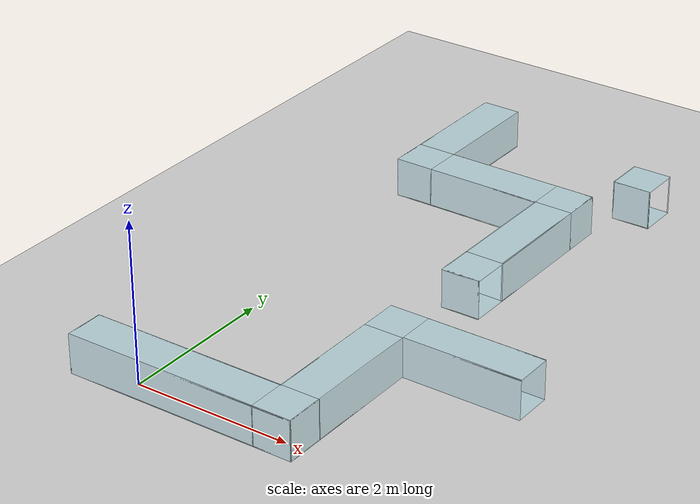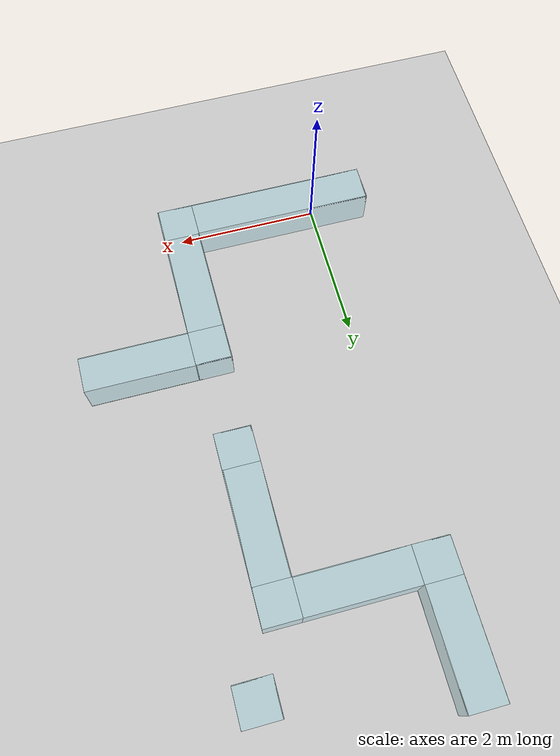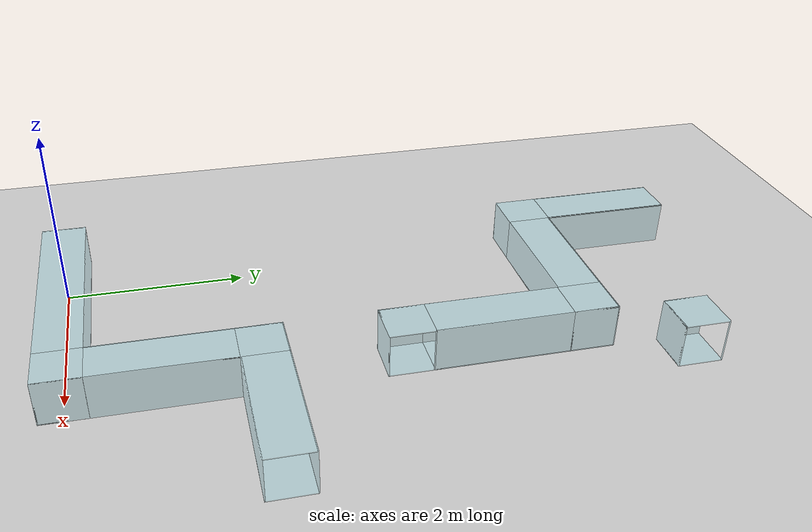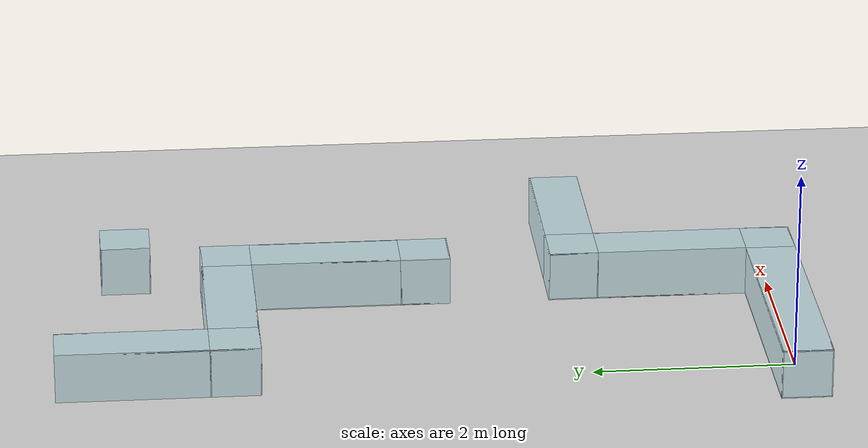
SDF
<sdf version="1.8">
 <world name="demo">
  <model name="ground_plane">
   <static>true</static>
   <link name="link">
    <collision name="collision">
     <geometry><plane><normal>0 0 1</normal><size>100 100</size></plane></geometry>
    </collision>
    <visual name="visual">
     <geometry><plane><normal>0 0 1</normal><size>100 100</size></plane></geometry>
     <material>
      <ambient>0.8 0.8 0.8 1</ambient>
      <diffuse>0.8 0.8 0.8 1</diffuse>
      <specular>0.8 0.8 0.8 1</specular>
     </material>
    </visual>
   </link>
  </model>
  <model name="ground_plane">
   <static>true</static>
   <link name="link">
    <collision name="collision">
     <geometry><plane><normal>0 0 1</normal><size>100 100</size></plane></geometry>
    </collision>
    <visual name="visual">
     <geometry><plane><normal>0 0 1</normal><size>100 100</size></plane></geometry>
     <material>
      <ambient>0.6 0.85 0.9 0.4</ambient>
      <diffuse>0.6 0.85 0.9 0.4</diffuse>
      <specular>0.1 0.1 0.1 1</specular>
      <emissive>0 0 0 1</emissive>
     </material>
    </visual>
   </link>
  </model>
  <model name="T1">
   <pose>0.500000 0.000000 0.250000 0.000000 0.000000 0.000000</pose>
   <static>true</static>
   <link name="link">
    <collision name="col_side_posY">
     <pose>0.000000 0.245000 0.000000 0.000000 0.000000 0.000000</pose>
     <geometry><box><size>2.500000 0.010000 0.500000</size></box></geometry>
    </collision>
    <visual name="vis_col_side_posY">
     <pose>0.000000 0.245000 0.000000 0.000000 0.000000 0.000000</pose>
     <geometry><box><size>2.500000 0.010000 0.500000</size></box></geometry>
     <material>
      <ambient>0.6 0.85 0.9 0.4</ambient>
      <diffuse>0.6 0.85 0.9 0.4</diffuse>
      <specular>0.1 0.1 0.1 1</specular>
      <emissive>0 0 0 1</emissive>
     </material>
    </visual>
    <collision name="col_side_negY">
     <pose>0.000000 -0.245000 0.000000 0.000000 0.000000 0.000000</pose>
     <geometry><box><size>2.500000 0.010000 0.500000</size></box></geometry>
    </collision>
    <visual name="vis_col_side_negY">
     <pose>0.000000 -0.245000 0.000000 0.000000 0.000000 0.000000</pose>
     <geometry><box><size>2.500000 0.010000 0.500000</size></box></geometry>
     <material>
      <ambient>0.6 0.85 0.9 0.4</ambient>
      <diffuse>0.6 0.85 0.9 0.4</diffuse>
      <specular>0.1 0.1 0.1 1</specular>
      <emissive>0 0 0 1</emissive>
     </material>
    </visual>
    <collision name="col_top">
     <pose>0.000000 0.000000 0.245000 0.000000 0.000000 0.000000</pose>
     <geometry><box><size>2.500000 0.500000 0.010000</size></box></geometry>
    </collision>
    <visual name="vis_col_top">
     <pose>0.000000 0.000000 0.245000 0.000000 0.000000 0.000000</pose>
     <geometry><box><size>2.500000 0.500000 0.010000</size></box></geometry>
     <material>
      <ambient>0.6 0.85 0.9 0.4</ambient>
      <diffuse>0.6 0.85 0.9 0.4</diffuse>
      <specular>0.1 0.1 0.1 1</specular>
      <emissive>0 0 0 1</emissive>
     </material>
    </visual>
    <collision name="col_bottom">
     <pose>0.000000 0.000000 -0.245000 0.000000 0.000000 0.000000</pose>
     <geometry><box><size>2.500000 0.500000 0.010000</size></box></geometry>
    </collision>
    <visual name="vis_col_bottom">
     <pose>0.000000 0.000000 -0.245000 0.000000 0.000000 0.000000</pose>
     <geometry><box><size>2.500000 0.500000 0.010000</size></box></geometry>
     <material>
      <ambient>0.6 0.85 0.9 0.4</ambient>
      <diffuse>0.6 0.85 0.9 0.4</diffuse>
      <specular>0.1 0.1 0.1 1</specular>
      <emissive>0 0 0 1</emissive>
     </material>
    </visual>
    <collision name="col_end_negX">
     <pose>-1.245000 0.000000 0.000000 0.000000 0.000000 0.000000</pose>
     <geometry><box><size>0.010000 0.500000 0.500000</size></box></geometry>
    </collision>
    <visual name="vis_col_end_negX">
     <pose>-1.245000 0.000000 0.000000 0.000000 0.000000 0.000000</pose>
     <geometry><box><size>0.010000 0.500000 0.500000</size></box></geometry>
     <material>
      <ambient>0.6 0.85 0.9 0.4</ambient>
      <diffuse>0.6 0.85 0.9 0.4</diffuse>
      <specular>0.1 0.1 0.1 1</specular>
      <emissive>0 0 0 1</emissive>
     </material>
    </visual>
   </link>
  </model>
  <model name="T2">
   <pose>2.000000 1.000000 0.250000 0.000000 0.000000 0.000000</pose>
   <static>true</static>
   <link name="link">
    <collision name="col_side_posX">
     <pose>0.245000 0.000000 0.000000 0.000000 0.000000 0.000000</pose>
     <geometry><box><size>0.010000 1.500000 0.500000</size></box></geometry>
    </collision>
    <visual name="vis_col_side_posX">
     <pose>0.245000 0.000000 0.000000 0.000000 0.000000 0.000000</pose>
     <geometry><box><size>0.010000 1.500000 0.500000</size></box></geometry>
     <material>
      <ambient>0.6 0.85 0.9 0.4</ambient>
      <diffuse>0.6 0.85 0.9 0.4</diffuse>
      <specular>0.1 0.1 0.1 1</specular>
      <emissive>0 0 0 1</emissive>
     </material>
    </visual>
    <collision name="col_side_negX">
     <pose>-0.245000 0.000000 0.000000 0.000000 0.000000 0.000000</pose>
     <geometry><box><size>0.010000 1.500000 0.500000</size></box></geometry>
    </collision>
    <visual name="vis_col_side_negX">
     <pose>-0.245000 0.000000 0.000000 0.000000 0.000000 0.000000</pose>
     <geometry><box><size>0.010000 1.500000 0.500000</size></box></geometry>
     <material>
      <ambient>0.6 0.85 0.9 0.4</ambient>
      <diffuse>0.6 0.85 0.9 0.4</diffuse>
      <specular>0.1 0.1 0.1 1</specular>
      <emissive>0 0 0 1</emissive>
     </material>
    </visual>
    <collision name="col_top">
     <pose>0.000000 0.000000 0.245000 0.000000 0.000000 0.000000</pose>
     <geometry><box><size>0.500000 1.500000 0.010000</size></box></geometry>
    </collision>
    <visual name="vis_col_top">
     <pose>0.000000 0.000000 0.245000 0.000000 0.000000 0.000000</pose>
     <geometry><box><size>0.500000 1.500000 0.010000</size></box></geometry>
     <material>
      <ambient>0.6 0.85 0.9 0.4</ambient>
      <diffuse>0.6 0.85 0.9 0.4</diffuse>
      <specular>0.1 0.1 0.1 1</specular>
      <emissive>0 0 0 1</emissive>
     </material>
    </visual>
    <collision name="col_bottom">
     <pose>0.000000 0.000000 -0.245000 0.000000 0.000000 0.000000</pose>
     <geometry><box><size>0.500000 1.500000 0.010000</size></box></geometry>
    </collision>
    <visual name="vis_col_bottom">
     <pose>0.000000 0.000000 -0.245000 0.000000 0.000000 0.000000</pose>
     <geometry><box><size>0.500000 1.500000 0.010000</size></box></geometry>
     <material>
      <ambient>0.6 0.85 0.9 0.4</ambient>
      <diffuse>0.6 0.85 0.9 0.4</diffuse>
      <specular>0.1 0.1 0.1 1</specular>
      <emissive>0 0 0 1</emissive>
     </material>
    </visual>
   </link>
  </model>
  <model name="T3">
   <pose>3.000000 2.000000 0.250000 0.000000 0.000000 0.000000</pose>
   <static>true</static>
   <link name="link">
    <collision name="col_side_posY">
     <pose>0.000000 0.245000 0.000000 0.000000 0.000000 0.000000</pose>
     <geometry><box><size>1.500000 0.010000 0.500000</size></box></geometry>
    </collision>
    <visual name="vis_col_side_posY">
     <pose>0.000000 0.245000 0.000000 0.000000 0.000000 0.000000</pose>
     <geometry><box><size>1.500000 0.010000 0.500000</size></box></geometry>
     <material>
      <ambient>0.6 0.85 0.9 0.4</ambient>
      <diffuse>0.6 0.85 0.9 0.4</diffuse>
      <specular>0.1 0.1 0.1 1</specular>
      <emissive>0 0 0 1</emissive>
     </material>
    </visual>
    <collision name="col_side_negY">
     <pose>0.000000 -0.245000 0.000000 0.000000 0.000000 0.000000</pose>
     <geometry><box><size>1.500000 0.010000 0.500000</size></box></geometry>
    </collision>
    <visual name="vis_col_side_negY">
     <pose>0.000000 -0.245000 0.000000 0.000000 0.000000 0.000000</pose>
     <geometry><box><size>1.500000 0.010000 0.500000</size></box></geometry>
     <material>
      <ambient>0.6 0.85 0.9 0.4</ambient>
      <diffuse>0.6 0.85 0.9 0.4</diffuse>
      <specular>0.1 0.1 0.1 1</specular>
      <emissive>0 0 0 1</emissive>
     </material>
    </visual>
    <collision name="col_top">
     <pose>0.000000 0.000000 0.245000 0.000000 0.000000 0.000000</pose>
     <geometry><box><size>1.500000 0.500000 0.010000</size></box></geometry>
    </collision>
    <visual name="vis_col_top">
     <pose>0.000000 0.000000 0.245000 0.000000 0.000000 0.000000</pose>
     <geometry><box><size>1.500000 0.500000 0.010000</size></box></geometry>
     <material>
      <ambient>0.6 0.85 0.9 0.4</ambient>
      <diffuse>0.6 0.85 0.9 0.4</diffuse>
      <specular>0.1 0.1 0.1 1</specular>
      <emissive>0 0 0 1</emissive>
     </material>
    </visual>
    <collision name="col_bottom">
     <pose>0.000000 0.000000 -0.245000 0.000000 0.000000 0.000000</pose>
     <geometry><box><size>1.500000 0.500000 0.010000</size></box></geometry>
    </collision>
    <visual name="vis_col_bottom">
     <pose>0.000000 0.000000 -0.245000 0.000000 0.000000 0.000000</pose>
     <geometry><box><size>1.500000 0.500000 0.010000</size></box></geometry>
     <material>
      <ambient>0.6 0.85 0.9 0.4</ambient>
      <diffuse>0.6 0.85 0.9 0.4</diffuse>
      <specular>0.1 0.1 0.1 1</specular>
      <emissive>0 0 0 1</emissive>
     </material>
    </visual>
   </link>
  </model>
  <model name="T6">
   <pose>2.000000 4.500000 0.250000 0.000000 0.000000 0.000000</pose>
   <static>true</static>
   <link name="link">
    <collision name="col_side_posX">
     <pose>0.245000 0.000000 0.000000 0.000000 0.000000 0.000000</pose>
     <geometry><box><size>0.010000 1.500000 0.500000</size></box></geometry>
    </collision>
    <visual name="vis_col_side_posX">
     <pose>0.245000 0.000000 0.000000 0.000000 0.000000 0.000000</pose>
     <geometry><box><size>0.010000 1.500000 0.500000</size></box></geometry>
     <material>
      <ambient>0.6 0.85 0.9 0.4</ambient>
      <diffuse>0.6 0.85 0.9 0.4</diffuse>
      <specular>0.1 0.1 0.1 1</specular>
      <emissive>0 0 0 1</emissive>
     </material>
    </visual>
    <collision name="col_side_negX">
     <pose>-0.245000 0.000000 0.000000 0.000000 0.000000 0.000000</pose>
     <geometry><box><size>0.010000 1.500000 0.500000</size></box></geometry>
    </collision>
    <visual name="vis_col_side_negX">
     <pose>-0.245000 0.000000 0.000000 0.000000 0.000000 0.000000</pose>
     <geometry><box><size>0.010000 1.500000 0.500000</size></box></geometry>
     <material>
      <ambient>0.6 0.85 0.9 0.4</ambient>
      <diffuse>0.6 0.85 0.9 0.4</diffuse>
      <specular>0.1 0.1 0.1 1</specular>
      <emissive>0 0 0 1</emissive>
     </material>
    </visual>
    <collision name="col_top">
     <pose>0.000000 0.000000 0.245000 0.000000 0.000000 0.000000</pose>
     <geometry><box><size>0.500000 1.500000 0.010000</size></box></geometry>
    </collision>
    <visual name="vis_col_top">
     <pose>0.000000 0.000000 0.245000 0.000000 0.000000 0.000000</pose>
     <geometry><box><size>0.500000 1.500000 0.010000</size></box></geometry>
     <material>
      <ambient>0.6 0.85 0.9 0.4</ambient>
      <diffuse>0.6 0.85 0.9 0.4</diffuse>
      <specular>0.1 0.1 0.1 1</specular>
      <emissive>0 0 0 1</emissive>
     </material>
    </visual>
    <collision name="col_bottom">
     <pose>0.000000 0.000000 -0.245000 0.000000 0.000000 0.000000</pose>
     <geometry><box><size>0.500000 1.500000 0.010000</size></box></geometry>
    </collision>
    <visual name="vis_col_bottom">
     <pose>0.000000 0.000000 -0.245000 0.000000 0.000000 0.000000</pose>
     <geometry><box><size>0.500000 1.500000 0.010000</size></box></geometry>
     <material>
      <ambient>0.6 0.85 0.9 0.4</ambient>
      <diffuse>0.6 0.85 0.9 0.4</diffuse>
      <specular>0.1 0.1 0.1 1</specular>
      <emissive>0 0 0 1</emissive>
     </material>
    </visual>
   </link>
  </model>
  <model name="T7">
   <pose>1.000000 5.500000 0.250000 0.000000 0.000000 0.000000</pose>
   <static>true</static>
   <link name="link">
    <collision name="col_side_posY">
     <pose>0.000000 0.245000 0.000000 0.000000 0.000000 0.000000</pose>
     <geometry><box><size>1.500000 0.010000 0.500000</size></box></geometry>
    </collision>
    <visual name="vis_col_side_posY">
     <pose>0.000000 0.245000 0.000000 0.000000 0.000000 0.000000</pose>
     <geometry><box><size>1.500000 0.010000 0.500000</size></box></geometry>
     <material>
      <ambient>0.6 0.85 0.9 0.4</ambient>
      <diffuse>0.6 0.85 0.9 0.4</diffuse>
      <specular>0.1 0.1 0.1 1</specular>
      <emissive>0 0 0 1</emissive>
     </material>
    </visual>
    <collision name="col_side_negY">
     <pose>0.000000 -0.245000 0.000000 0.000000 0.000000 0.000000</pose>
     <geometry><box><size>1.500000 0.010000 0.500000</size></box></geometry>
    </collision>
    <visual name="vis_col_side_negY">
     <pose>0.000000 -0.245000 0.000000 0.000000 0.000000 0.000000</pose>
     <geometry><box><size>1.500000 0.010000 0.500000</size></box></geometry>
     <material>
      <ambient>0.6 0.85 0.9 0.4</ambient>
      <diffuse>0.6 0.85 0.9 0.4</diffuse>
      <specular>0.1 0.1 0.1 1</specular>
      <emissive>0 0 0 1</emissive>
     </material>
    </visual>
    <collision name="col_top">
     <pose>0.000000 0.000000 0.245000 0.000000 0.000000 0.000000</pose>
     <geometry><box><size>1.500000 0.500000 0.010000</size></box></geometry>
    </collision>
    <visual name="vis_col_top">
     <pose>0.000000 0.000000 0.245000 0.000000 0.000000 0.000000</pose>
     <geometry><box><size>1.500000 0.500000 0.010000</size></box></geometry>
     <material>
      <ambient>0.6 0.85 0.9 0.4</ambient>
      <diffuse>0.6 0.85 0.9 0.4</diffuse>
      <specular>0.1 0.1 0.1 1</specular>
      <emissive>0 0 0 1</emissive>
     </material>
    </visual>
    <collision name="col_bottom">
     <pose>0.000000 0.000000 -0.245000 0.000000 0.000000 0.000000</pose>
     <geometry><box><size>1.500000 0.500000 0.010000</size></box></geometry>
    </collision>
    <visual name="vis_col_bottom">
     <pose>0.000000 0.000000 -0.245000 0.000000 0.000000 0.000000</pose>
     <geometry><box><size>1.500000 0.500000 0.010000</size></box></geometry>
     <material>
      <ambient>0.6 0.85 0.9 0.4</ambient>
      <diffuse>0.6 0.85 0.9 0.4</diffuse>
      <specular>0.1 0.1 0.1 1</specular>
      <emissive>0 0 0 1</emissive>
     </material>
    </visual>
   </link>
  </model>
  <model name="T8">
   <pose>0.000000 6.500000 0.250000 0.000000 0.000000 0.000000</pose>
   <static>true</static>
   <link name="link">
    <collision name="col_side_posX">
     <pose>0.245000 0.000000 0.000000 0.000000 0.000000 0.000000</pose>
     <geometry><box><size>0.010000 1.500000 0.500000</size></box></geometry>
    </collision>
    <visual name="vis_col_side_posX">
     <pose>0.245000 0.000000 0.000000 0.000000 0.000000 0.000000</pose>
     <geometry><box><size>0.010000 1.500000 0.500000</size></box></geometry>
     <material>
      <ambient>0.6 0.85 0.9 0.4</ambient>
      <diffuse>0.6 0.85 0.9 0.4</diffuse>
      <specular>0.1 0.1 0.1 1</specular>
      <emissive>0 0 0 1</emissive>
     </material>
    </visual>
    <collision name="col_side_negX">
     <pose>-0.245000 0.000000 0.000000 0.000000 0.000000 0.000000</pose>
     <geometry><box><size>0.010000 1.500000 0.500000</size></box></geometry>
    </collision>
    <visual name="vis_col_side_negX">
     <pose>-0.245000 0.000000 0.000000 0.000000 0.000000 0.000000</pose>
     <geometry><box><size>0.010000 1.500000 0.500000</size></box></geometry>
     <material>
      <ambient>0.6 0.85 0.9 0.4</ambient>
      <diffuse>0.6 0.85 0.9 0.4</diffuse>
      <specular>0.1 0.1 0.1 1</specular>
      <emissive>0 0 0 1</emissive>
     </material>
    </visual>
    <collision name="col_top">
     <pose>0.000000 0.000000 0.245000 0.000000 0.000000 0.000000</pose>
     <geometry><box><size>0.500000 1.500000 0.010000</size></box></geometry>
    </collision>
    <visual name="vis_col_top">
     <pose>0.000000 0.000000 0.245000 0.000000 0.000000 0.000000</pose>
     <geometry><box><size>0.500000 1.500000 0.010000</size></box></geometry>
     <material>
      <ambient>0.6 0.85 0.9 0.4</ambient>
      <diffuse>0.6 0.85 0.9 0.4</diffuse>
      <specular>0.1 0.1 0.1 1</specular>
      <emissive>0 0 0 1</emissive>
     </material>
    </visual>
    <collision name="col_bottom">
     <pose>0.000000 0.000000 -0.245000 0.000000 0.000000 0.000000</pose>
     <geometry><box><size>0.500000 1.500000 0.010000</size></box></geometry>
    </collision>
    <visual name="vis_col_bottom">
     <pose>0.000000 0.000000 -0.245000 0.000000 0.000000 0.000000</pose>
     <geometry><box><size>0.500000 1.500000 0.010000</size></box></geometry>
     <material>
      <ambient>0.6 0.85 0.9 0.4</ambient>
      <diffuse>0.6 0.85 0.9 0.4</diffuse>
      <specular>0.1 0.1 0.1 1</specular>
      <emissive>0 0 0 1</emissive>
     </material>
    </visual>
   </link>
  </model>
  <model name="C1">
   <pose>2.000000 0.000000 0.250000 0.000000 0.000000 0.000000</pose>
   <static>true</static>
   <link name="link">
    <collision name="wall_posX">
     <pose>0.245000 0.000000 0.000000 0.000000 0.000000 0.000000</pose>
     <geometry><box><size>0.010000 0.500000 0.500000</size></box></geometry>
    </collision>
    <visual name="vis_wall_posX">
     <pose>0.245000 0.000000 0.000000 0.000000 0.000000 0.000000</pose>
     <geometry><box><size>0.010000 0.500000 0.500000</size></box></geometry>
     <material>
      <ambient>0.6 0.85 0.9 0.4</ambient>
      <diffuse>0.6 0.85 0.9 0.4</diffuse>
      <specular>0.1 0.1 0.1 1</specular>
      <emissive>0 0 0 1</emissive>
     </material>
    </visual>
    <collision name="wall_negY">
     <pose>0.000000 -0.245000 0.000000 0.000000 0.000000 0.000000</pose>
     <geometry><box><size>0.500000 0.010000 0.500000</size></box></geometry>
    </collision>
    <visual name="vis_wall_negY">
     <pose>0.000000 -0.245000 0.000000 0.000000 0.000000 0.000000</pose>
     <geometry><box><size>0.500000 0.010000 0.500000</size></box></geometry>
     <material>
      <ambient>0.6 0.85 0.9 0.4</ambient>
      <diffuse>0.6 0.85 0.9 0.4</diffuse>
      <specular>0.1 0.1 0.1 1</specular>
      <emissive>0 0 0 1</emissive>
     </material>
    </visual>
    <collision name="wall_posZ">
     <pose>0.000000 0.000000 0.245000 0.000000 0.000000 0.000000</pose>
     <geometry><box><size>0.500000 0.500000 0.010000</size></box></geometry>
    </collision>
    <visual name="vis_wall_posZ">
     <pose>0.000000 0.000000 0.245000 0.000000 0.000000 0.000000</pose>
     <geometry><box><size>0.500000 0.500000 0.010000</size></box></geometry>
     <material>
      <ambient>0.6 0.85 0.9 0.4</ambient>
      <diffuse>0.6 0.85 0.9 0.4</diffuse>
      <specular>0.1 0.1 0.1 1</specular>
      <emissive>0 0 0 1</emissive>
     </material>
    </visual>
    <collision name="wall_negZ">
     <pose>0.000000 0.000000 -0.245000 0.000000 0.000000 0.000000</pose>
     <geometry><box><size>0.500000 0.500000 0.010000</size></box></geometry>
    </collision>
    <visual name="vis_wall_negZ">
     <pose>0.000000 0.000000 -0.245000 0.000000 0.000000 0.000000</pose>
     <geometry><box><size>0.500000 0.500000 0.010000</size></box></geometry>
     <material>
      <ambient>0.6 0.85 0.9 0.4</ambient>
      <diffuse>0.6 0.85 0.9 0.4</diffuse>
      <specular>0.1 0.1 0.1 1</specular>
      <emissive>0 0 0 1</emissive>
     </material>
    </visual>
    <collision name="corner_pXpY">
     <pose>0.245000 0.245000 0.000000 0.000000 0.000000 0.000000</pose>
     <geometry><box><size>0.010000 0.010000 0.500000</size></box></geometry>
    </collision>
    <visual name="vis_corner_pXpY">
     <pose>0.245000 0.245000 0.000000 0.000000 0.000000 0.000000</pose>
     <geometry><box><size>0.010000 0.010000 0.500000</size></box></geometry>
     <material>
      <ambient>0.6 0.85 0.9 0.4</ambient>
      <diffuse>0.6 0.85 0.9 0.4</diffuse>
      <specular>0.1 0.1 0.1 1</specular>
      <emissive>0 0 0 1</emissive>
     </material>
    </visual>
    <collision name="corner_mXpY">
     <pose>-0.245000 0.245000 0.000000 0.000000 0.000000 0.000000</pose>
     <geometry><box><size>0.010000 0.010000 0.500000</size></box></geometry>
    </collision>
    <visual name="vis_corner_mXpY">
     <pose>-0.245000 0.245000 0.000000 0.000000 0.000000 0.000000</pose>
     <geometry><box><size>0.010000 0.010000 0.500000</size></box></geometry>
     <material>
      <ambient>0.6 0.85 0.9 0.4</ambient>
      <diffuse>0.6 0.85 0.9 0.4</diffuse>
      <specular>0.1 0.1 0.1 1</specular>
      <emissive>0 0 0 1</emissive>
     </material>
    </visual>
    <collision name="corner_mXmY">
     <pose>-0.245000 -0.245000 0.000000 0.000000 0.000000 0.000000</pose>
     <geometry><box><size>0.010000 0.010000 0.500000</size></box></geometry>
    </collision>
    <visual name="vis_corner_mXmY">
     <pose>-0.245000 -0.245000 0.000000 0.000000 0.000000 0.000000</pose>
     <geometry><box><size>0.010000 0.010000 0.500000</size></box></geometry>
     <material>
      <ambient>0.6 0.85 0.9 0.4</ambient>
      <diffuse>0.6 0.85 0.9 0.4</diffuse>
      <specular>0.1 0.1 0.1 1</specular>
      <emissive>0 0 0 1</emissive>
     </material>
    </visual>
   </link>
  </model>
  <model name="C2">
   <pose>2.000000 2.000000 0.250000 0.000000 0.000000 0.000000</pose>
   <static>true</static>
   <link name="link">
    <collision name="wall_negX">
     <pose>-0.245000 0.000000 0.000000 0.000000 0.000000 0.000000</pose>
     <geometry><box><size>0.010000 0.500000 0.500000</size></box></geometry>
    </collision>
    <visual name="vis_wall_negX">
     <pose>-0.245000 0.000000 0.000000 0.000000 0.000000 0.000000</pose>
     <geometry><box><size>0.010000 0.500000 0.500000</size></box></geometry>
     <material>
      <ambient>0.6 0.85 0.9 0.4</ambient>
      <diffuse>0.6 0.85 0.9 0.4</diffuse>
      <specular>0.1 0.1 0.1 1</specular>
      <emissive>0 0 0 1</emissive>
     </material>
    </visual>
    <collision name="wall_posY">
     <pose>0.000000 0.245000 0.000000 0.000000 0.000000 0.000000</pose>
     <geometry><box><size>0.500000 0.010000 0.500000</size></box></geometry>
    </collision>
    <visual name="vis_wall_posY">
     <pose>0.000000 0.245000 0.000000 0.000000 0.000000 0.000000</pose>
     <geometry><box><size>0.500000 0.010000 0.500000</size></box></geometry>
     <material>
      <ambient>0.6 0.85 0.9 0.4</ambient>
      <diffuse>0.6 0.85 0.9 0.4</diffuse>
      <specular>0.1 0.1 0.1 1</specular>
      <emissive>0 0 0 1</emissive>
     </material>
    </visual>
    <collision name="wall_posZ">
     <pose>0.000000 0.000000 0.245000 0.000000 0.000000 0.000000</pose>
     <geometry><box><size>0.500000 0.500000 0.010000</size></box></geometry>
    </collision>
    <visual name="vis_wall_posZ">
     <pose>0.000000 0.000000 0.245000 0.000000 0.000000 0.000000</pose>
     <geometry><box><size>0.500000 0.500000 0.010000</size></box></geometry>
     <material>
      <ambient>0.6 0.85 0.9 0.4</ambient>
      <diffuse>0.6 0.85 0.9 0.4</diffuse>
      <specular>0.1 0.1 0.1 1</specular>
      <emissive>0 0 0 1</emissive>
     </material>
    </visual>
    <collision name="wall_negZ">
     <pose>0.000000 0.000000 -0.245000 0.000000 0.000000 0.000000</pose>
     <geometry><box><size>0.500000 0.500000 0.010000</size></box></geometry>
    </collision>
    <visual name="vis_wall_negZ">
     <pose>0.000000 0.000000 -0.245000 0.000000 0.000000 0.000000</pose>
     <geometry><box><size>0.500000 0.500000 0.010000</size></box></geometry>
     <material>
      <ambient>0.6 0.85 0.9 0.4</ambient>
      <diffuse>0.6 0.85 0.9 0.4</diffuse>
      <specular>0.1 0.1 0.1 1</specular>
      <emissive>0 0 0 1</emissive>
     </material>
    </visual>
    <collision name="corner_pXpY">
     <pose>0.245000 0.245000 0.000000 0.000000 0.000000 0.000000</pose>
     <geometry><box><size>0.010000 0.010000 0.500000</size></box></geometry>
    </collision>
    <visual name="vis_corner_pXpY">
     <pose>0.245000 0.245000 0.000000 0.000000 0.000000 0.000000</pose>
     <geometry><box><size>0.010000 0.010000 0.500000</size></box></geometry>
     <material>
      <ambient>0.6 0.85 0.9 0.4</ambient>
      <diffuse>0.6 0.85 0.9 0.4</diffuse>
      <specular>0.1 0.1 0.1 1</specular>
      <emissive>0 0 0 1</emissive>
     </material>
    </visual>
    <collision name="corner_pXmY">
     <pose>0.245000 -0.245000 0.000000 0.000000 0.000000 0.000000</pose>
     <geometry><box><size>0.010000 0.010000 0.500000</size></box></geometry>
    </collision>
    <visual name="vis_corner_pXmY">
     <pose>0.245000 -0.245000 0.000000 0.000000 0.000000 0.000000</pose>
     <geometry><box><size>0.010000 0.010000 0.500000</size></box></geometry>
     <material>
      <ambient>0.6 0.85 0.9 0.4</ambient>
      <diffuse>0.6 0.85 0.9 0.4</diffuse>
      <specular>0.1 0.1 0.1 1</specular>
      <emissive>0 0 0 1</emissive>
     </material>
    </visual>
    <collision name="corner_mXmY">
     <pose>-0.245000 -0.245000 0.000000 0.000000 0.000000 0.000000</pose>
     <geometry><box><size>0.010000 0.010000 0.500000</size></box></geometry>
    </collision>
    <visual name="vis_corner_mXmY">
     <pose>-0.245000 -0.245000 0.000000 0.000000 0.000000 0.000000</pose>
     <geometry><box><size>0.010000 0.010000 0.500000</size></box></geometry>
     <material>
      <ambient>0.6 0.85 0.9 0.4</ambient>
      <diffuse>0.6 0.85 0.9 0.4</diffuse>
      <specular>0.1 0.1 0.1 1</specular>
      <emissive>0 0 0 1</emissive>
     </material>
    </visual>
   </link>
  </model>
  <model name="C5">
   <pose>2.000000 3.500000 0.250000 0.000000 0.000000 0.000000</pose>
   <static>true</static>
   <link name="link">
    <collision name="wall_negX">
     <pose>-0.245000 0.000000 0.000000 0.000000 0.000000 0.000000</pose>
     <geometry><box><size>0.010000 0.500000 0.500000</size></box></geometry>
    </collision>
    <visual name="vis_wall_negX">
     <pose>-0.245000 0.000000 0.000000 0.000000 0.000000 0.000000</pose>
     <geometry><box><size>0.010000 0.500000 0.500000</size></box></geometry>
     <material>
      <ambient>0.6 0.85 0.9 0.4</ambient>
      <diffuse>0.6 0.85 0.9 0.4</diffuse>
      <specular>0.1 0.1 0.1 1</specular>
      <emissive>0 0 0 1</emissive>
     </material>
    </visual>
    <collision name="wall_negY">
     <pose>0.000000 -0.245000 0.000000 0.000000 0.000000 0.000000</pose>
     <geometry><box><size>0.500000 0.010000 0.500000</size></box></geometry>
    </collision>
    <visual name="vis_wall_negY">
     <pose>0.000000 -0.245000 0.000000 0.000000 0.000000 0.000000</pose>
     <geometry><box><size>0.500000 0.010000 0.500000</size></box></geometry>
     <material>
      <ambient>0.6 0.85 0.9 0.4</ambient>
      <diffuse>0.6 0.85 0.9 0.4</diffuse>
      <specular>0.1 0.1 0.1 1</specular>
      <emissive>0 0 0 1</emissive>
     </material>
    </visual>
    <collision name="wall_posZ">
     <pose>0.000000 0.000000 0.245000 0.000000 0.000000 0.000000</pose>
     <geometry><box><size>0.500000 0.500000 0.010000</size></box></geometry>
    </collision>
    <visual name="vis_wall_posZ">
     <pose>0.000000 0.000000 0.245000 0.000000 0.000000 0.000000</pose>
     <geometry><box><size>0.500000 0.500000 0.010000</size></box></geometry>
     <material>
      <ambient>0.6 0.85 0.9 0.4</ambient>
      <diffuse>0.6 0.85 0.9 0.4</diffuse>
      <specular>0.1 0.1 0.1 1</specular>
      <emissive>0 0 0 1</emissive>
     </material>
    </visual>
    <collision name="wall_negZ">
     <pose>0.000000 0.000000 -0.245000 0.000000 0.000000 0.000000</pose>
     <geometry><box><size>0.500000 0.500000 0.010000</size></box></geometry>
    </collision>
    <visual name="vis_wall_negZ">
     <pose>0.000000 0.000000 -0.245000 0.000000 0.000000 0.000000</pose>
     <geometry><box><size>0.500000 0.500000 0.010000</size></box></geometry>
     <material>
      <ambient>0.6 0.85 0.9 0.4</ambient>
      <diffuse>0.6 0.85 0.9 0.4</diffuse>
      <specular>0.1 0.1 0.1 1</specular>
      <emissive>0 0 0 1</emissive>
     </material>
    </visual>
    <collision name="corner_pXpY">
     <pose>0.245000 0.245000 0.000000 0.000000 0.000000 0.000000</pose>
     <geometry><box><size>0.010000 0.010000 0.500000</size></box></geometry>
    </collision>
    <visual name="vis_corner_pXpY">
     <pose>0.245000 0.245000 0.000000 0.000000 0.000000 0.000000</pose>
     <geometry><box><size>0.010000 0.010000 0.500000</size></box></geometry>
     <material>
      <ambient>0.6 0.85 0.9 0.4</ambient>
      <diffuse>0.6 0.85 0.9 0.4</diffuse>
      <specular>0.1 0.1 0.1 1</specular>
      <emissive>0 0 0 1</emissive>
     </material>
    </visual>
    <collision name="corner_pXmY">
     <pose>0.245000 -0.245000 0.000000 0.000000 0.000000 0.000000</pose>
     <geometry><box><size>0.010000 0.010000 0.500000</size></box></geometry>
    </collision>
    <visual name="vis_corner_pXmY">
     <pose>0.245000 -0.245000 0.000000 0.000000 0.000000 0.000000</pose>
     <geometry><box><size>0.010000 0.010000 0.500000</size></box></geometry>
     <material>
      <ambient>0.6 0.85 0.9 0.4</ambient>
      <diffuse>0.6 0.85 0.9 0.4</diffuse>
      <specular>0.1 0.1 0.1 1</specular>
      <emissive>0 0 0 1</emissive>
     </material>
    </visual>
    <collision name="corner_mXpY">
     <pose>-0.245000 0.245000 0.000000 0.000000 0.000000 0.000000</pose>
     <geometry><box><size>0.010000 0.010000 0.500000</size></box></geometry>
    </collision>
    <visual name="vis_corner_mXpY">
     <pose>-0.245000 0.245000 0.000000 0.000000 0.000000 0.000000</pose>
     <geometry><box><size>0.010000 0.010000 0.500000</size></box></geometry>
     <material>
      <ambient>0.6 0.85 0.9 0.4</ambient>
      <diffuse>0.6 0.85 0.9 0.4</diffuse>
      <specular>0.1 0.1 0.1 1</specular>
      <emissive>0 0 0 1</emissive>
     </material>
    </visual>
   </link>
  </model>
  <model name="C6">
   <pose>2.000000 5.500000 0.250000 0.000000 0.000000 0.000000</pose>
   <static>true</static>
   <link name="link">
    <collision name="wall_posX">
     <pose>0.245000 0.000000 0.000000 0.000000 0.000000 0.000000</pose>
     <geometry><box><size>0.010000 0.500000 0.500000</size></box></geometry>
    </collision>
    <visual name="vis_wall_posX">
     <pose>0.245000 0.000000 0.000000 0.000000 0.000000 0.000000</pose>
     <geometry><box><size>0.010000 0.500000 0.500000</size></box></geometry>
     <material>
      <ambient>0.6 0.85 0.9 0.4</ambient>
      <diffuse>0.6 0.85 0.9 0.4</diffuse>
      <specular>0.1 0.1 0.1 1</specular>
      <emissive>0 0 0 1</emissive>
     </material>
    </visual>
    <collision name="wall_posY">
     <pose>0.000000 0.245000 0.000000 0.000000 0.000000 0.000000</pose>
     <geometry><box><size>0.500000 0.010000 0.500000</size></box></geometry>
    </collision>
    <visual name="vis_wall_posY">
     <pose>0.000000 0.245000 0.000000 0.000000 0.000000 0.000000</pose>
     <geometry><box><size>0.500000 0.010000 0.500000</size></box></geometry>
     <material>
      <ambient>0.6 0.85 0.9 0.4</ambient>
      <diffuse>0.6 0.85 0.9 0.4</diffuse>
      <specular>0.1 0.1 0.1 1</specular>
      <emissive>0 0 0 1</emissive>
     </material>
    </visual>
    <collision name="wall_posZ">
     <pose>0.000000 0.000000 0.245000 0.000000 0.000000 0.000000</pose>
     <geometry><box><size>0.500000 0.500000 0.010000</size></box></geometry>
    </collision>
    <visual name="vis_wall_posZ">
     <pose>0.000000 0.000000 0.245000 0.000000 0.000000 0.000000</pose>
     <geometry><box><size>0.500000 0.500000 0.010000</size></box></geometry>
     <material>
      <ambient>0.6 0.85 0.9 0.4</ambient>
      <diffuse>0.6 0.85 0.9 0.4</diffuse>
      <specular>0.1 0.1 0.1 1</specular>
      <emissive>0 0 0 1</emissive>
     </material>
    </visual>
    <collision name="wall_negZ">
     <pose>0.000000 0.000000 -0.245000 0.000000 0.000000 0.000000</pose>
     <geometry><box><size>0.500000 0.500000 0.010000</size></box></geometry>
    </collision>
    <visual name="vis_wall_negZ">
     <pose>0.000000 0.000000 -0.245000 0.000000 0.000000 0.000000</pose>
     <geometry><box><size>0.500000 0.500000 0.010000</size></box></geometry>
     <material>
      <ambient>0.6 0.85 0.9 0.4</ambient>
      <diffuse>0.6 0.85 0.9 0.4</diffuse>
      <specular>0.1 0.1 0.1 1</specular>
      <emissive>0 0 0 1</emissive>
     </material>
    </visual>
    <collision name="corner_pXmY">
     <pose>0.245000 -0.245000 0.000000 0.000000 0.000000 0.000000</pose>
     <geometry><box><size>0.010000 0.010000 0.500000</size></box></geometry>
    </collision>
    <visual name="vis_corner_pXmY">
     <pose>0.245000 -0.245000 0.000000 0.000000 0.000000 0.000000</pose>
     <geometry><box><size>0.010000 0.010000 0.500000</size></box></geometry>
     <material>
      <ambient>0.6 0.85 0.9 0.4</ambient>
      <diffuse>0.6 0.85 0.9 0.4</diffuse>
      <specular>0.1 0.1 0.1 1</specular>
      <emissive>0 0 0 1</emissive>
     </material>
    </visual>
    <collision name="corner_mXpY">
     <pose>-0.245000 0.245000 0.000000 0.000000 0.000000 0.000000</pose>
     <geometry><box><size>0.010000 0.010000 0.500000</size></box></geometry>
    </collision>
    <visual name="vis_corner_mXpY">
     <pose>-0.245000 0.245000 0.000000 0.000000 0.000000 0.000000</pose>
     <geometry><box><size>0.010000 0.010000 0.500000</size></box></geometry>
     <material>
      <ambient>0.6 0.85 0.9 0.4</ambient>
      <diffuse>0.6 0.85 0.9 0.4</diffuse>
      <specular>0.1 0.1 0.1 1</specular>
      <emissive>0 0 0 1</emissive>
     </material>
    </visual>
    <collision name="corner_mXmY">
     <pose>-0.245000 -0.245000 0.000000 0.000000 0.000000 0.000000</pose>
     <geometry><box><size>0.010000 0.010000 0.500000</size></box></geometry>
    </collision>
    <visual name="vis_corner_mXmY">
     <pose>-0.245000 -0.245000 0.000000 0.000000 0.000000 0.000000</pose>
     <geometry><box><size>0.010000 0.010000 0.500000</size></box></geometry>
     <material>
      <ambient>0.6 0.85 0.9 0.4</ambient>
      <diffuse>0.6 0.85 0.9 0.4</diffuse>
      <specular>0.1 0.1 0.1 1</specular>
      <emissive>0 0 0 1</emissive>
     </material>
    </visual>
   </link>
  </model>
  <model name="C7">
   <pose>0.000000 5.500000 0.250000 0.000000 0.000000 0.000000</pose>
   <static>true</static>
   <link name="link">
    <collision name="wall_negX">
     <pose>-0.245000 0.000000 0.000000 0.000000 0.000000 0.000000</pose>
     <geometry><box><size>0.010000 0.500000 0.500000</size></box></geometry>
    </collision>
    <visual name="vis_wall_negX">
     <pose>-0.245000 0.000000 0.000000 0.000000 0.000000 0.000000</pose>
     <geometry><box><size>0.010000 0.500000 0.500000</size></box></geometry>
     <material>
      <ambient>0.6 0.85 0.9 0.4</ambient>
      <diffuse>0.6 0.85 0.9 0.4</diffuse>
      <specular>0.1 0.1 0.1 1</specular>
      <emissive>0 0 0 1</emissive>
     </material>
    </visual>
    <collision name="wall_negY">
     <pose>0.000000 -0.245000 0.000000 0.000000 0.000000 0.000000</pose>
     <geometry><box><size>0.500000 0.010000 0.500000</size></box></geometry>
    </collision>
    <visual name="vis_wall_negY">
     <pose>0.000000 -0.245000 0.000000 0.000000 0.000000 0.000000</pose>
     <geometry><box><size>0.500000 0.010000 0.500000</size></box></geometry>
     <material>
      <ambient>0.6 0.85 0.9 0.4</ambient>
      <diffuse>0.6 0.85 0.9 0.4</diffuse>
      <specular>0.1 0.1 0.1 1</specular>
      <emissive>0 0 0 1</emissive>
     </material>
    </visual>
    <collision name="wall_posZ">
     <pose>0.000000 0.000000 0.245000 0.000000 0.000000 0.000000</pose>
     <geometry><box><size>0.500000 0.500000 0.010000</size></box></geometry>
    </collision>
    <visual name="vis_wall_posZ">
     <pose>0.000000 0.000000 0.245000 0.000000 0.000000 0.000000</pose>
     <geometry><box><size>0.500000 0.500000 0.010000</size></box></geometry>
     <material>
      <ambient>0.6 0.85 0.9 0.4</ambient>
      <diffuse>0.6 0.85 0.9 0.4</diffuse>
      <specular>0.1 0.1 0.1 1</specular>
      <emissive>0 0 0 1</emissive>
     </material>
    </visual>
    <collision name="wall_negZ">
     <pose>0.000000 0.000000 -0.245000 0.000000 0.000000 0.000000</pose>
     <geometry><box><size>0.500000 0.500000 0.010000</size></box></geometry>
    </collision>
    <visual name="vis_wall_negZ">
     <pose>0.000000 0.000000 -0.245000 0.000000 0.000000 0.000000</pose>
     <geometry><box><size>0.500000 0.500000 0.010000</size></box></geometry>
     <material>
      <ambient>0.6 0.85 0.9 0.4</ambient>
      <diffuse>0.6 0.85 0.9 0.4</diffuse>
      <specular>0.1 0.1 0.1 1</specular>
      <emissive>0 0 0 1</emissive>
     </material>
    </visual>
    <collision name="corner_pXpY">
     <pose>0.245000 0.245000 0.000000 0.000000 0.000000 0.000000</pose>
     <geometry><box><size>0.010000 0.010000 0.500000</size></box></geometry>
    </collision>
    <visual name="vis_corner_pXpY">
     <pose>0.245000 0.245000 0.000000 0.000000 0.000000 0.000000</pose>
     <geometry><box><size>0.010000 0.010000 0.500000</size></box></geometry>
     <material>
      <ambient>0.6 0.85 0.9 0.4</ambient>
      <diffuse>0.6 0.85 0.9 0.4</diffuse>
      <specular>0.1 0.1 0.1 1</specular>
      <emissive>0 0 0 1</emissive>
     </material>
    </visual>
    <collision name="corner_pXmY">
     <pose>0.245000 -0.245000 0.000000 0.000000 0.000000 0.000000</pose>
     <geometry><box><size>0.010000 0.010000 0.500000</size></box></geometry>
    </collision>
    <visual name="vis_corner_pXmY">
     <pose>0.245000 -0.245000 0.000000 0.000000 0.000000 0.000000</pose>
     <geometry><box><size>0.010000 0.010000 0.500000</size></box></geometry>
     <material>
      <ambient>0.6 0.85 0.9 0.4</ambient>
      <diffuse>0.6 0.85 0.9 0.4</diffuse>
      <specular>0.1 0.1 0.1 1</specular>
      <emissive>0 0 0 1</emissive>
     </material>
    </visual>
    <collision name="corner_mXpY">
     <pose>-0.245000 0.245000 0.000000 0.000000 0.000000 0.000000</pose>
     <geometry><box><size>0.010000 0.010000 0.500000</size></box></geometry>
    </collision>
    <visual name="vis_corner_mXpY">
     <pose>-0.245000 0.245000 0.000000 0.000000 0.000000 0.000000</pose>
     <geometry><box><size>0.010000 0.010000 0.500000</size></box></geometry>
     <material>
      <ambient>0.6 0.85 0.9 0.4</ambient>
      <diffuse>0.6 0.85 0.9 0.4</diffuse>
      <specular>0.1 0.1 0.1 1</specular>
      <emissive>0 0 0 1</emissive>
     </material>
    </visual>
   </link>
  </model>
  <model name="C14">
   <pose>2.500000 6.500000 0.250000 0.000000 0.000000 0.000000</pose>
   <static>true</static>
   <link name="link">
    <collision name="wall_negX">
     <pose>-0.245000 0.000000 0.000000 0.000000 0.000000 0.000000</pose>
     <geometry><box><size>0.010000 0.500000 0.500000</size></box></geometry>
    </collision>
    <visual name="vis_wall_negX">
     <pose>-0.245000 0.000000 0.000000 0.000000 0.000000 0.000000</pose>
     <geometry><box><size>0.010000 0.500000 0.500000</size></box></geometry>
     <material>
      <ambient>0.6 0.85 0.9 0.4</ambient>
      <diffuse>0.6 0.85 0.9 0.4</diffuse>
      <specular>0.1 0.1 0.1 1</specular>
      <emissive>0 0 0 1</emissive>
     </material>
    </visual>
    <collision name="wall_negY">
     <pose>0.000000 -0.245000 0.000000 0.000000 0.000000 0.000000</pose>
     <geometry><box><size>0.500000 0.010000 0.500000</size></box></geometry>
    </collision>
    <visual name="vis_wall_negY">
     <pose>0.000000 -0.245000 0.000000 0.000000 0.000000 0.000000</pose>
     <geometry><box><size>0.500000 0.010000 0.500000</size></box></geometry>
     <material>
      <ambient>0.6 0.85 0.9 0.4</ambient>
      <diffuse>0.6 0.85 0.9 0.4</diffuse>
      <specular>0.1 0.1 0.1 1</specular>
      <emissive>0 0 0 1</emissive>
     </material>
    </visual>
    <collision name="wall_posZ">
     <pose>0.000000 0.000000 0.245000 0.000000 0.000000 0.000000</pose>
     <geometry><box><size>0.500000 0.500000 0.010000</size></box></geometry>
    </collision>
    <visual name="vis_wall_posZ">
     <pose>0.000000 0.000000 0.245000 0.000000 0.000000 0.000000</pose>
     <geometry><box><size>0.500000 0.500000 0.010000</size></box></geometry>
     <material>
      <ambient>0.6 0.85 0.9 0.4</ambient>
      <diffuse>0.6 0.85 0.9 0.4</diffuse>
      <specular>0.1 0.1 0.1 1</specular>
      <emissive>0 0 0 1</emissive>
     </material>
    </visual>
    <collision name="wall_negZ">
     <pose>0.000000 0.000000 -0.245000 0.000000 0.000000 0.000000</pose>
     <geometry><box><size>0.500000 0.500000 0.010000</size></box></geometry>
    </collision>
    <visual name="vis_wall_negZ">
     <pose>0.000000 0.000000 -0.245000 0.000000 0.000000 0.000000</pose>
     <geometry><box><size>0.500000 0.500000 0.010000</size></box></geometry>
     <material>
      <ambient>0.6 0.85 0.9 0.4</ambient>
      <diffuse>0.6 0.85 0.9 0.4</diffuse>
      <specular>0.1 0.1 0.1 1</specular>
      <emissive>0 0 0 1</emissive>
     </material>
    </visual>
    <collision name="corner_pXpY">
     <pose>0.245000 0.245000 0.000000 0.000000 0.000000 0.000000</pose>
     <geometry><box><size>0.010000 0.010000 0.500000</size></box></geometry>
    </collision>
    <visual name="vis_corner_pXpY">
     <pose>0.245000 0.245000 0.000000 0.000000 0.000000 0.000000</pose>
     <geometry><box><size>0.010000 0.010000 0.500000</size></box></geometry>
     <material>
      <ambient>0.6 0.85 0.9 0.4</ambient>
      <diffuse>0.6 0.85 0.9 0.4</diffuse>
      <specular>0.1 0.1 0.1 1</specular>
      <emissive>0 0 0 1</emissive>
     </material>
    </visual>
    <collision name="corner_pXmY">
     <pose>0.245000 -0.245000 0.000000 0.000000 0.000000 0.000000</pose>
     <geometry><box><size>0.010000 0.010000 0.500000</size></box></geometry>
    </collision>
    <visual name="vis_corner_pXmY">
     <pose>0.245000 -0.245000 0.000000 0.000000 0.000000 0.000000</pose>
     <geometry><box><size>0.010000 0.010000 0.500000</size></box></geometry>
     <material>
      <ambient>0.6 0.85 0.9 0.4</ambient>
      <diffuse>0.6 0.85 0.9 0.4</diffuse>
      <specular>0.1 0.1 0.1 1</specular>
      <emissive>0 0 0 1</emissive>
     </material>
    </visual>
    <collision name="corner_mXpY">
     <pose>-0.245000 0.245000 0.000000 0.000000 0.000000 0.000000</pose>
     <geometry><box><size>0.010000 0.010000 0.500000</size></box></geometry>
    </collision>
    <visual name="vis_corner_mXpY">
     <pose>-0.245000 0.245000 0.000000 0.000000 0.000000 0.000000</pose>
     <geometry><box><size>0.010000 0.010000 0.500000</size></box></geometry>
     <material>
      <ambient>0.6 0.85 0.9 0.4</ambient>
      <diffuse>0.6 0.85 0.9 0.4</diffuse>
      <specular>0.1 0.1 0.1 1</specular>
      <emissive>0 0 0 1</emissive>
     </material>
    </visual>
   </link>
  </model>
 </world>
</sdf>
